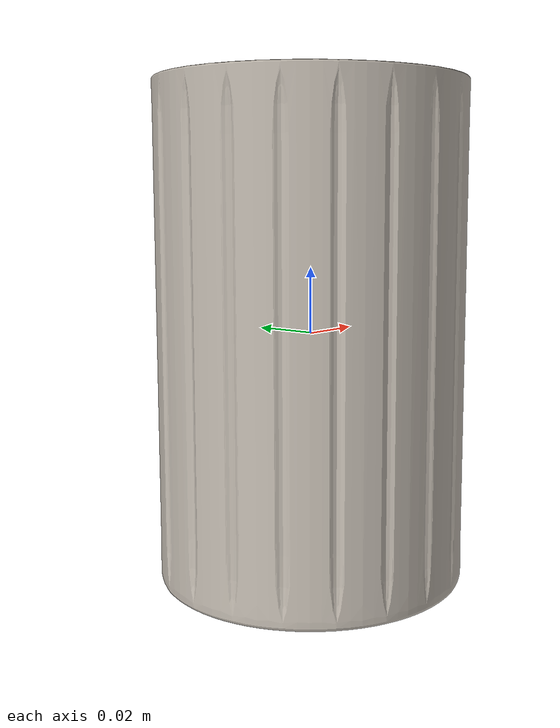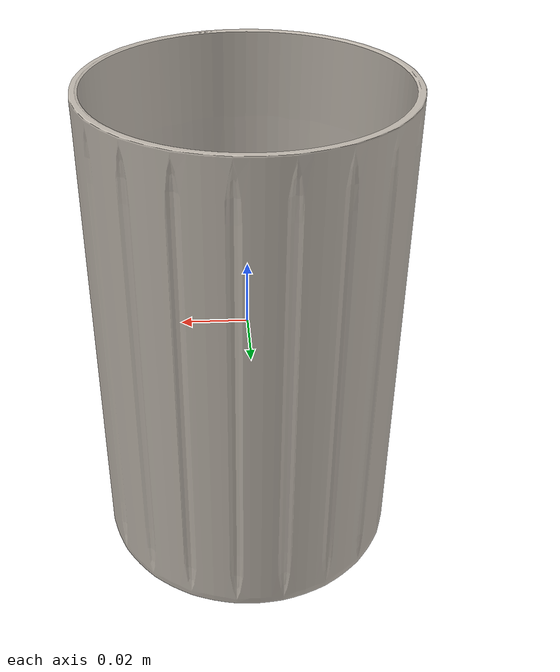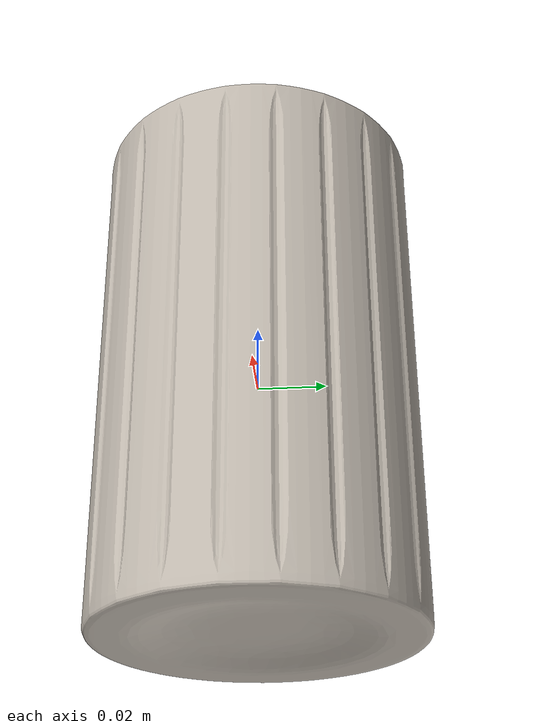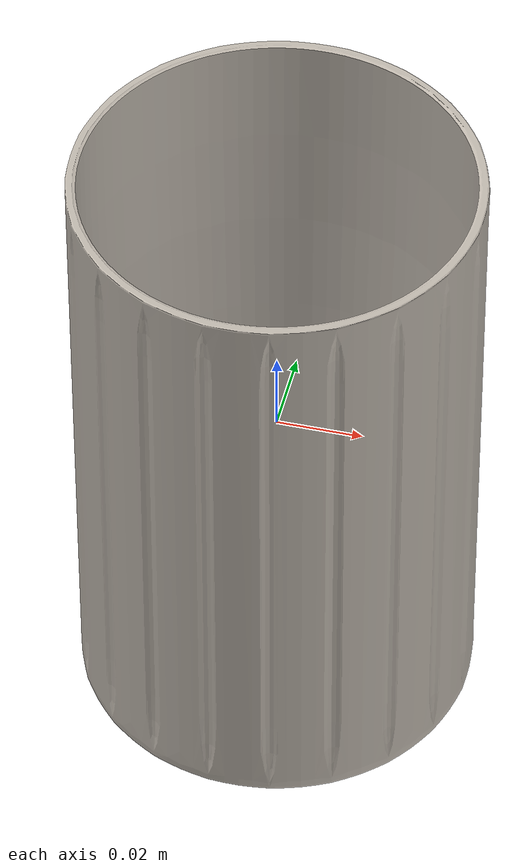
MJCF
<mujoco model="model">
  <option timestep="0.002" gravity="0.0 0.0 -9.81"/>
  <compiler angle="radian"/>
  <asset>
    <mesh file="visual/Clear.obj" name="GlassCup002_Clear_vis"/>
    <texture file="visual/T_BC001.png" name="GlassCup002_Clear_material" type="2d"/>
    <material name="GlassCup002_Clear_material" texture="GlassCup002_Clear_material" shininess="0.5" specular="0.3103448502657381"/>
    <mesh file="collision/collision_mesh_collision_0.obj" name="GlassCup002_collision_mesh_0"/>
    <mesh file="collision/collision_mesh_collision_1.obj" name="GlassCup002_collision_mesh_1"/>
    <mesh file="collision/collision_mesh_collision_2.obj" name="GlassCup002_collision_mesh_2"/>
    <mesh file="collision/collision_mesh_collision_3.obj" name="GlassCup002_collision_mesh_3"/>
    <mesh file="collision/collision_mesh_collision_4.obj" name="GlassCup002_collision_mesh_4"/>
    <mesh file="collision/collision_mesh_collision_5.obj" name="GlassCup002_collision_mesh_5"/>
    <mesh file="collision/collision_mesh_collision_6.obj" name="GlassCup002_collision_mesh_6"/>
    <mesh file="collision/collision_mesh_collision_7.obj" name="GlassCup002_collision_mesh_7"/>
    <mesh file="collision/collision_mesh_collision_8.obj" name="GlassCup002_collision_mesh_8"/>
    <mesh file="collision/collision_mesh_collision_9.obj" name="GlassCup002_collision_mesh_9"/>
    <mesh file="collision/collision_mesh_collision_10.obj" name="GlassCup002_collision_mesh_10"/>
    <mesh file="collision/collision_mesh_collision_11.obj" name="GlassCup002_collision_mesh_11"/>
    <mesh file="collision/collision_mesh_collision_12.obj" name="GlassCup002_collision_mesh_12"/>
    <mesh file="collision/collision_mesh_collision_13.obj" name="GlassCup002_collision_mesh_13"/>
    <mesh file="collision/collision_mesh_collision_14.obj" name="GlassCup002_collision_mesh_14"/>
    <mesh file="collision/collision_mesh_collision_15.obj" name="GlassCup002_collision_mesh_15"/>
  </asset>
  <default>
    <default class="visual">
      <geom conaffinity="0" contype="0" group="1" type="mesh"/>
    </default>
    <default class="collision">
      <geom group="3" rgba="0.5 0 0 0.5" density="1000.0"/>
    </default>
    <default class="spawn">
      <geom group="0" rgba="1 1 1 0.5" contype="0" conaffinity="0"/>
      <site group="0" rgba="1 1 1 0.5"/>
    </default>
    <default class="region">
      <geom group="1" conaffinity="0" contype="0" rgba="0 1 0 0" mass="0"/>
    </default>
  </default>
  <worldbody>
    <body>
      <body name="object">
        <geom mesh="GlassCup002_Clear_vis" type="mesh" solimp="0.998 0.998 0.001" solref="0.001 1" friction="0.95 0.3 0.1" class="visual" material="GlassCup002_Clear_material"/>
        <geom mesh="GlassCup002_collision_mesh_0" type="mesh" class="collision"/>
        <geom mesh="GlassCup002_collision_mesh_1" type="mesh" class="collision"/>
        <geom mesh="GlassCup002_collision_mesh_2" type="mesh" class="collision"/>
        <geom mesh="GlassCup002_collision_mesh_3" type="mesh" class="collision"/>
        <geom mesh="GlassCup002_collision_mesh_4" type="mesh" class="collision"/>
        <geom mesh="GlassCup002_collision_mesh_5" type="mesh" class="collision"/>
        <geom mesh="GlassCup002_collision_mesh_6" type="mesh" class="collision"/>
        <geom mesh="GlassCup002_collision_mesh_7" type="mesh" class="collision"/>
        <geom mesh="GlassCup002_collision_mesh_8" type="mesh" class="collision"/>
        <geom mesh="GlassCup002_collision_mesh_9" type="mesh" class="collision"/>
        <geom mesh="GlassCup002_collision_mesh_10" type="mesh" class="collision"/>
        <geom mesh="GlassCup002_collision_mesh_11" type="mesh" class="collision"/>
        <geom mesh="GlassCup002_collision_mesh_12" type="mesh" class="collision"/>
        <geom mesh="GlassCup002_collision_mesh_13" type="mesh" class="collision"/>
        <geom mesh="GlassCup002_collision_mesh_14" type="mesh" class="collision"/>
        <geom mesh="GlassCup002_collision_mesh_15" type="mesh" class="collision"/>
        <geom class="region" name="reg_bbox" type="box" pos="1.9650000000030754e-06 4.2000000000097515e-07 -1.707499999999834e-05" size="0.047240884999999996 0.04724259 0.07600301500000001"/>
        <geom class="region" name="liquid" type="cylinder" rgba="0 0 0 0" size="0.045 0.001" pos="0.000002 0.000000 0.047583"/>
        <geom class="region" name="reg_int" type="cylinder" rgba="0 0 0 0" size="0.03 0.07" pos="0.000002 0.000000 0.0155"/>
      </body>
    </body>
  </worldbody>
  <actuator/>
</mujoco>
